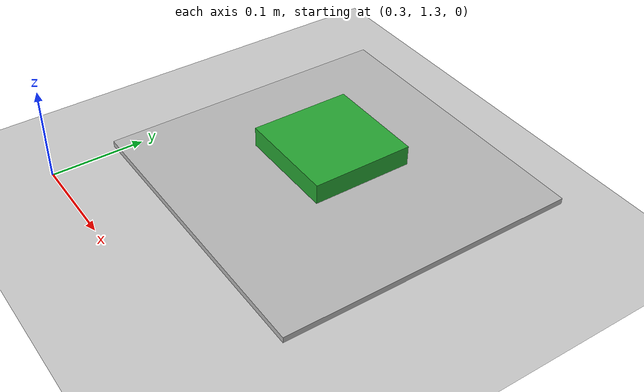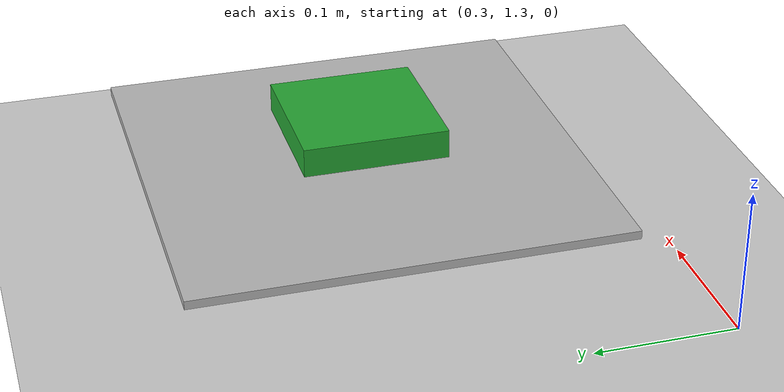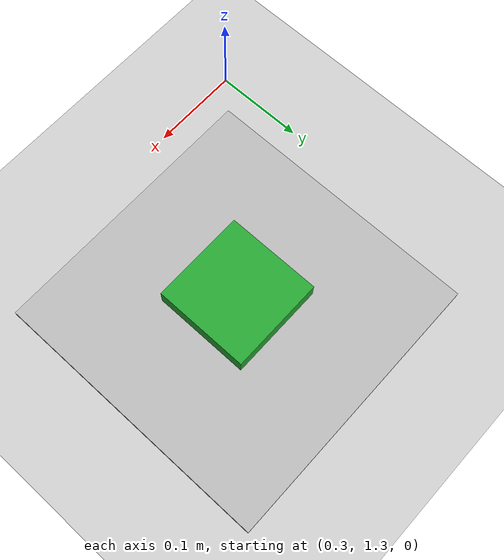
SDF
<?xml version="1.0" ?>
<sdf version="1.5">
  <world name="default">
    <!-- A global light source -->
    <include>
      <uri>model://sun</uri>
    </include>
    <!-- A ground plane -->
    <include>
      <uri>model://ground_plane</uri>
    </include>
    <include>
      <uri>model://asphalt_plane</uri>
    </include>
    <physics name='default_physics' default='0' type='ode'>
      <gravity>0 0 -9.8066</gravity>
      <ode>
        <solver>
          <type>quick</type>
          <iters>10</iters>
          <sor>1.3</sor>
          <use_dynamic_moi_rescaling>0</use_dynamic_moi_rescaling>
        </solver>
        <constraints>
          <cfm>0</cfm>
          <erp>0.2</erp>
          <contact_max_correcting_vel>100</contact_max_correcting_vel>
          <contact_surface_layer>0.001</contact_surface_layer>
        </constraints>
      </ode>
      <max_step_size>0.004</max_step_size>
      <real_time_factor>1</real_time_factor>
      <real_time_update_rate>250</real_time_update_rate>
      <magnetic_field>6.0e-6 2.3e-5 -4.2e-5</magnetic_field>
    </physics>

    <model name="irlock_beacon">
      <pose>0.5 1.5 0.08 0 0 0</pose>
      <link name="link">
         <inertial>
          <pose>0 0 0 0 0 0</pose>
          <mass>10.0</mass>
          <inertia>
            <ixx>0.01</ixx>
            <ixy>0</ixy>
            <ixz>0</ixz>
            <iyy>0.01</iyy>
            <iyz>0</iyz>
            <izz>0.01</izz>
          </inertia>
        </inertial>
        <collision name="collision">
          <geometry>
            <box>
              <size>0.1 0.1 0.01</size>
            </box>
          </geometry>
          <surface>
            <friction>
              <ode>
                <mu>1.0</mu>
                <mu2>1.0</mu2>
                <fdir1>1 0 0</fdir1>
              </ode>
            </friction>
            <contact>
              <ode>
                <kp>1e+12</kp>
                <kd>1</kd>
                <max_vel>10</max_vel>
                <min_depth>0.003</min_depth>
              </ode>
            </contact>
          </surface>
        </collision>
        <visual name="visual">
          <geometry>
            <box>
              <size>0.1 0.1 0.02</size>
            </box>
          </geometry>
          <material>
            <script>
              <name>Gazebo/Green</name>
            </script>
          </material>
        </visual>
      </link>
      <static>1</static>
    </model>

    <include>
      <uri>model://dict_6x6_250_68</uri>
      <name>aruco_marker</name>
      <pose>0.65 1.5 0.05 0 -1.57 0</pose>
      <link name="link">
        <inertial>
          <pose>0 0 0 0 0 0</pose>
          <mass>10.0</mass>
          <inertia>
            <ixx>0.01</ixx>
            <ixy>0</ixy>
            <ixz>0</ixz>
            <iyy>0.01</iyy>
            <iyz>0</iyz>
            <izz>0.01</izz>
          </inertia>
        </inertial>
        <collision name="collision">
          <geometry>
            <box>
              <size>0.1 0.1 0.02</size>
            </box>
          </geometry>
          <surface>
            <friction>
              <ode>
                <mu>1.0</mu>
                <mu2>1.0</mu2>
                <fdir1>1 0 0</fdir1>
              </ode>
            </friction>
            <contact>
              <ode>
                <min_depth>0.003</min_depth>
              </ode>
            </contact>
          </surface>
        </collision>
      </link>
    </include>

  </world>
</sdf>

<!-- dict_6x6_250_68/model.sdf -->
<sdf version="1.6">
  <model name="DICT_6X6_250_68">
    <static>true</static>
    <link name="link">
      <visual name="visual">
        <geometry>
          <mesh>
            <uri>model://dict_6x6_250_68/meshes/DICT_6X6_250_68.dae</uri>
          <scale>0.6 0.6 0.6</scale></mesh>
        </geometry>
      </visual>
    </link>
  </model>
</sdf>
